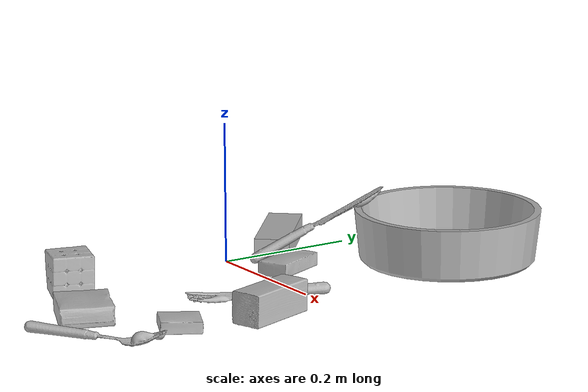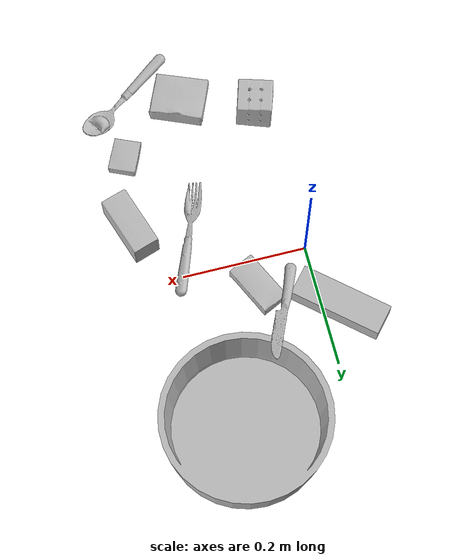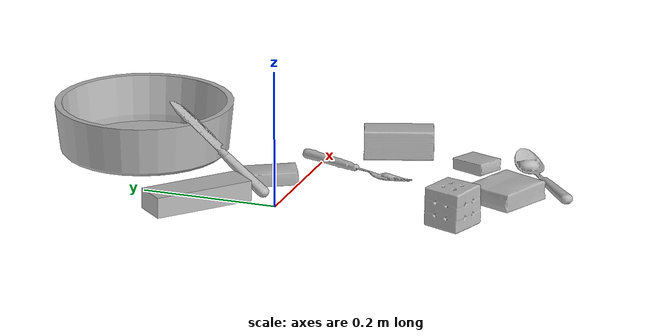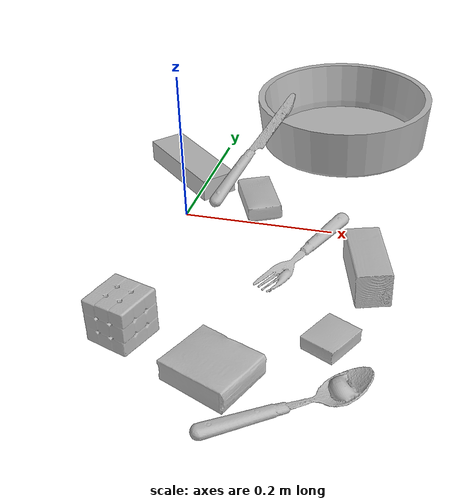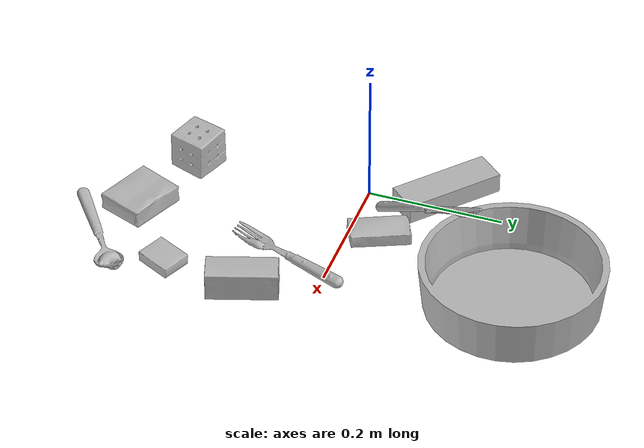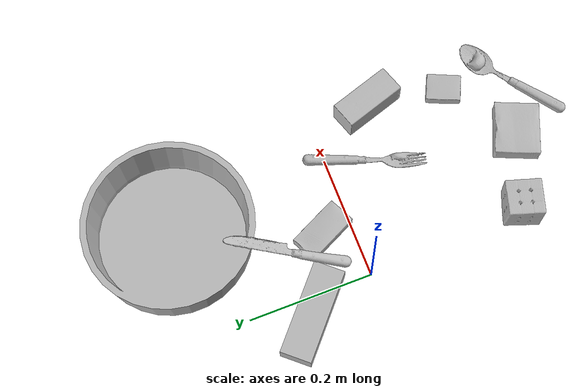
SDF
<sdf version="1.4">
  <world name="default">
    <light name="light1" type="point">
      <pose>0 0 1 0 0 0</pose>
      <diffuse>3 3 3 1</diffuse>
      <specular>3 3 3 1</specular>
    </light>
    <light name="light2" type="point">
      <pose>0 0.5 2 0 0 0</pose>
      <diffuse>1 1 1 1</diffuse>
      <specular>1 1 1 1</specular>
    </light>
    <light name="light3" type="point">
      <pose>0 0.5 2 0 0 0</pose>
      <diffuse>3 3 3 1</diffuse>
      <specular>3 3 3 1</specular>
    </light>
    <scene>
      <ambient>0.7 0.7 0.7</ambient>
    </scene>
    <model name="box11">
      <link name="link_box11">
        <collision name="default">
          <geometry>
            <mesh>
              <uri>model://jenga/collision_meshes/collision.obj</uri>
              <scale>1.0 1.0 1.0</scale>
            </mesh>
          </geometry>
          <surface>
            <friction>
              <ode>
                <mu>0.5</mu>
                <mu2>0.5</mu2>
              </ode>
            </friction>
          <contact>
        <ode>
            <max_vel>0</max_vel>
            <min_depth>0.0001</min_depth>
            <kp>1e8</kp>
        </ode>
    </contact></surface>
        </collision>
        <visual name="default">
          <geometry>
            <mesh>
              <uri>model://jenga/visual_meshes/visual.dae</uri>
              <scale>1.0 1.0 1.0</scale>
            </mesh>
          </geometry>
        </visual>
        <inertial>
          <mass>0.22063912451267242</mass>
          <pose>-2.502855807051674e-07 -0.00010250011109746993 -4.0923405322246253e-05 0.0 -7.34215461761844e-07 0.0</pose>
          <inertia>
            <ixx>6.1056206e-05</ixx>
            <iyy>0.00041371517</iyy>
            <izz>0.00044167612</izz>
            <ixy>0</ixy>
            <ixz>0</ixz>
            <iyz>0</iyz>
          </inertia>
        </inertial>
      </link>
      <pose>-0.027867667376995087 0.10774640738964081 0.015000000596046448 5.074702473125783e-07 1.493129544517112e-07 2.4208595408642064</pose>
    </model>
    <model name="box12">
      <link name="link_box12">
        <collision name="default">
          <geometry>
            <mesh>
              <uri>model://sugar_box/collision_meshes/collision.obj</uri>
              <scale>0.5 0.5 0.5</scale>
            </mesh>
          </geometry>
          <surface>
            <friction>
              <ode>
                <mu>0.5</mu>
                <mu2>0.5</mu2>
              </ode>
            </friction>
          <contact>
        <ode>
            <max_vel>0</max_vel>
            <min_depth>0.0001</min_depth>
            <kp>1e8</kp>
        </ode>
    </contact></surface>
        </collision>
        <visual name="default">
          <geometry>
            <mesh>
              <uri>model://sugar_box/visual_meshes/visual.dae</uri>
              <scale>0.5 0.5 0.5</scale>
            </mesh>
          </geometry>
        </visual>
        <inertial>
          <mass>0.053318966180086136</mass>
          <pose>0.0005171863595023751 1.924554817378521e-05 -0.00018182402709499002 -0.00040462627129080113 0.001050663522124822 0.0026153787889376494</pose>
          <inertia>
            <ixx>1.1106302e-05</ixx>
            <iyy>3.5897858e-05</iyy>
            <izz>4.2974014e-05</izz>
            <ixy>0</ixy>
            <ixz>0</ixz>
            <iyz>0</iyz>
          </inertia>
        </inertial>
      </link>
      <pose>0.08972600102424622 0.04557061195373535 0.01139929797500372 0.0007754874237024986 -0.023432634904433303 -1.1239626454362897</pose>
    </model>
    <model name="box13">
      <link name="link_box13">
        <collision name="default">
          <geometry>
            <mesh>
              <uri>model://gelatin_box/collision_meshes/collision.obj</uri>
              <scale>1.0 1.0 1.0</scale>
            </mesh>
          </geometry>
          <surface>
            <friction>
              <ode>
                <mu>0.5</mu>
                <mu2>0.5</mu2>
              </ode>
            </friction>
          <contact>
        <ode>
            <max_vel>0</max_vel>
            <min_depth>0.0001</min_depth>
            <kp>1e8</kp>
        </ode>
    </contact></surface>
        </collision>
        <visual name="default">
          <geometry>
            <mesh>
              <uri>model://gelatin_box/visual_meshes/visual.dae</uri>
              <scale>1.0 1.0 1.0</scale>
            </mesh>
          </geometry>
        </visual>
        <inertial>
          <mass>0.19111748039722443</mass>
          <pose>0.0004319618456065655 0.00011156871914863586 -0.00036403207923285663 -0.0010503719765995955 -0.004755818690324038 0.01644055947160125</pose>
          <inertia>
            <ixx>0.00013491335</ixx>
            <iyy>9.63679e-05</iyy>
            <izz>0.00020536821</izz>
            <ixy>0</ixy>
            <ixz>0</ixz>
            <iyz>0</iyz>
          </inertia>
        </inertial>
      </link>
      <pose>0.1338578760623932 -0.30272799730300903 0.015168312937021255 0.005597402643989079 -0.0073044715861611135 1.163271947563906</pose>
    </model>
    <model name="box21">
      <link name="link_box21">
        <collision name="default">
          <geometry>
            <mesh>
              <uri>model://pudding_box/collision_meshes/collision.obj</uri>
              <scale>0.5 0.5 0.5</scale>
            </mesh>
          </geometry>
          <surface>
            <friction>
              <ode>
                <mu>0.5</mu>
                <mu2>0.5</mu2>
              </ode>
            </friction>
          <contact>
        <ode>
            <max_vel>0</max_vel>
            <min_depth>0.0001</min_depth>
            <kp>1e8</kp>
        </ode>
    </contact></surface>
        </collision>
        <visual name="default">
          <geometry>
            <mesh>
              <uri>model://pudding_box/visual_meshes/visual.dae</uri>
              <scale>0.5 0.5 0.5</scale>
            </mesh>
          </geometry>
        </visual>
        <inertial>
          <mass>0.037507444620132446</mass>
          <pose>0.00024474109522998333 0.0004033942532259971 -0.0002594413817860186 0.00521310221980129 -0.006603800139852783 0.020079832606434308</pose>
          <inertia>
            <ixx>1.0600058e-05</ixx>
            <iyy>7.131795e-06</iyy>
            <izz>1.5653754e-05</izz>
            <ixy>0</ixy>
            <ixz>0</ixz>
            <iyz>0</iyz>
          </inertia>
        </inertial>
      </link>
      <pose>0.24382774531841278 -0.22340841591358185 0.009862902574241161 0.022348523532573696 -0.011391744381461288 2.7062908209220606</pose>
    </model>
    <model name="box22">
      <link name="link_box22">
        <collision name="default">
          <geometry>
            <mesh>
              <uri>model://rubiks_cube/collision_meshes/collision.obj</uri>
              <scale>1.0 1.0 1.0</scale>
            </mesh>
          </geometry>
          <surface>
            <friction>
              <ode>
                <mu>0.5</mu>
                <mu2>0.5</mu2>
              </ode>
            </friction>
          <contact>
        <ode>
            <max_vel>0</max_vel>
            <min_depth>0.0001</min_depth>
            <kp>1e8</kp>
        </ode>
    </contact></surface>
        </collision>
        <visual name="default">
          <geometry>
            <mesh>
              <uri>model://rubiks_cube/visual_meshes/visual.dae</uri>
              <scale>1.0 1.0 1.0</scale>
            </mesh>
          </geometry>
        </visual>
        <inertial>
          <mass>0.19412381947040558</mass>
          <pose>2.6721041649580002e-05 5.2569666877388954e-05 -7.264316082000732e-06 -0.05467327462967597 -0.09814157667114887 -0.034454893398498845</pose>
          <inertia>
            <ixx>0.000107266445</ixx>
            <iyy>0.0001067662</iyy>
            <izz>0.00010815532</izz>
            <ixy>0</ixy>
            <ixz>0</ixz>
            <iyz>0</iyz>
          </inertia>
        </inertial>
      </link>
      <pose>0.015841253101825714 -0.2584916949272156 0.028678975999355316 -3.300770750387792e-06 -8.605102912519851e-07 -0.3082101858531904</pose>
    </model>
    <model name="box23">
      <link name="link_box23">
        <collision name="default">
          <geometry>
            <mesh>
              <uri>model://wood_block/collision_meshes/collision.obj</uri>
              <scale>0.5 0.5 0.5</scale>
            </mesh>
          </geometry>
          <surface>
            <friction>
              <ode>
                <mu>0.5</mu>
                <mu2>0.5</mu2>
              </ode>
            </friction>
          <contact>
        <ode>
            <max_vel>0</max_vel>
            <min_depth>0.0001</min_depth>
            <kp>1e8</kp>
        </ode>
    </contact></surface>
        </collision>
        <visual name="default">
          <geometry>
            <mesh>
              <uri>model://wood_block/visual_meshes/visual.dae</uri>
              <scale>0.5 0.5 0.5</scale>
            </mesh>
          </geometry>
        </visual>
        <inertial>
          <mass>0.12021861970424652</mass>
          <pose>-2.9066577553749084e-06 -0.000285404734313488 0.00013204291462898254 -0.05220783851692058 -0.005192695246339916 -0.006861377900732038</pose>
          <inertia>
            <ixx>4.0217674e-05</ixx>
            <iyy>0.00012704768</iyy>
            <izz>0.00012657243</izz>
            <ixy>0</ixy>
            <ixz>0</ixz>
            <iyz>0</iyz>
          </inertia>
        </inertial>
      </link>
      <pose>0.26290005445480347 -0.09774709492921829 0.022629264742136 -0.005208456639173209 0.005718755207938706 -1.2510733126812366</pose>
    </model>
    <model name="plate1">
      <link name="link_plate1">
        <collision name="default">
          <geometry>
            <mesh>
              <uri>model://pan_tefal/collision_meshes/collision.obj</uri>
              <scale>1.0 1.0 1.0</scale>
            </mesh>
          </geometry>
          <surface>
            <friction>
              <ode>
                <mu>0.5</mu>
                <mu2>0.5</mu2>
              </ode>
            </friction>
          <contact>
        <ode>
            <max_vel>0</max_vel>
            <min_depth>0.0001</min_depth>
            <kp>1e8</kp>
        </ode>
    </contact></surface>
        </collision>
        <visual name="default">
          <geometry>
            <mesh>
              <uri>model://pan_tefal/visual_meshes/visual.dae</uri>
              <scale>1.0 1.0 1.0</scale>
            </mesh>
          </geometry>
        </visual>
        <inertial>
          <mass>1.1174349784851074</mass>
          <pose>-0.0001800186582840979 3.278696021880023e-05 -0.00851493701338768 0.0008190242272949328 -0.00033013996347192336 -0.33186114310704434</pose>
          <inertia>
            <ixx>0.0077136005</ixx>
            <iyy>0.0077633304</iyy>
            <izz>0.014199255</izz>
            <ixy>0</ixy>
            <ixz>0</ixz>
            <iyz>0</iyz>
          </inertia>
        </inertial>
      </link>
      <pose>0.1667015105485916 0.26608914136886597 0.03805002197623253 8.11042742150848e-09 -8.575475801113528e-09 -2.1885425789632014</pose>
    </model>
    <model name="silverware1">
      <link name="link_silverware1">
        <collision name="default">
          <geometry>
            <mesh>
              <uri>model://spoon/collision_meshes/collision.obj</uri>
              <scale>1.0 1.0 1.0</scale>
            </mesh>
          </geometry>
          <surface>
            <friction>
              <ode>
                <mu>0.5</mu>
                <mu2>0.5</mu2>
              </ode>
            </friction>
          <contact>
        <ode>
            <max_vel>0</max_vel>
            <min_depth>0.0001</min_depth>
            <kp>1e8</kp>
        </ode>
    </contact></surface>
        </collision>
        <visual name="default">
          <geometry>
            <mesh>
              <uri>model://spoon/visual_meshes/visual.dae</uri>
              <scale>1.0 1.0 1.0</scale>
            </mesh>
          </geometry>
        </visual>
        <inertial>
          <mass>0.03790392354130745</mass>
          <pose>-0.005526311695575714 -0.0016034170985221863 -0.0007271655485965312 0.03521845899657386 -0.039065840459698326 0.006150612465639116</pose>
          <inertia>
            <ixx>2.1082776e-06</ixx>
            <iyy>0.00014422317</iyy>
            <izz>0.00014526285</izz>
            <ixy>0</ixy>
            <ixz>0</ixz>
            <iyz>0</iyz>
          </inertia>
        </inertial>
      </link>
      <pose>0.21839526295661926 -0.3313553035259247 0.00838526152074337 0.006729253076973184 0.026893007858662835 0.6320279662396616</pose>
    </model>
    <model name="silverware2">
      <link name="link_silverware2">
        <collision name="default">
          <geometry>
            <mesh>
              <uri>model://fork/collision_meshes/collision.obj</uri>
              <scale>1.0 1.0 1.0</scale>
            </mesh>
          </geometry>
          <surface>
            <friction>
              <ode>
                <mu>0.5</mu>
                <mu2>0.5</mu2>
              </ode>
            </friction>
          <contact>
        <ode>
            <max_vel>0</max_vel>
            <min_depth>0.0001</min_depth>
            <kp>1e8</kp>
        </ode>
    </contact></surface>
        </collision>
        <visual name="default">
          <geometry>
            <mesh>
              <uri>model://fork/visual_meshes/visual.dae</uri>
              <scale>1.0 1.0 1.0</scale>
            </mesh>
          </geometry>
        </visual>
        <inertial>
          <mass>0.029004188254475594</mass>
          <pose>-0.02957005612552166 0.0004658824182115495 0.00032188621116802096 -0.013551880215526314 -0.010977843078655252 0.014453906566097012</pose>
          <inertia>
            <ixx>1.0167608e-06</ixx>
            <iyy>7.572158e-05</iyy>
            <izz>7.617634e-05</izz>
            <ixy>0</ixy>
            <ixz>0</ixz>
            <iyz>0</iyz>
          </inertia>
        </inertial>
      </link>
      <pose>0.17723838984966278 -0.059679582715034485 0.005740725435316563 -0.18705978744483956 0.02432271859055491 -1.9403791717464722</pose>
    </model>
    <model name="silverware3">
      <link name="link_silverware3">
        <collision name="default">
          <geometry>
            <mesh>
              <uri>model://knife/collision_meshes/collision.obj</uri>
              <scale>1.0 1.0 1.0</scale>
            </mesh>
          </geometry>
          <surface>
            <friction>
              <ode>
                <mu>0.5</mu>
                <mu2>0.5</mu2>
              </ode>
            </friction>
          <contact>
        <ode>
            <max_vel>0</max_vel>
            <min_depth>0.0001</min_depth>
            <kp>1e8</kp>
        </ode>
    </contact></surface>
        </collision>
        <visual name="default">
          <geometry>
            <mesh>
              <uri>model://knife/visual_meshes/visual.dae</uri>
              <scale>1.0 1.0 1.0</scale>
            </mesh>
          </geometry>
        </visual>
        <inertial>
          <mass>0.015800314024090767</mass>
          <pose>-0.023785250261425972 0.0015275126788765192 5.0620288675418124e-05 0.07305498599936577 0.01724841842216061 -0.0074098211805850795</pose>
          <inertia>
            <ixx>4.48477e-07</ixx>
            <iyy>6.0702252e-05</iyy>
            <izz>6.0846694e-05</izz>
            <ixy>0</ixy>
            <ixz>0</ixz>
            <iyz>0</iyz>
          </inertia>
        </inertial>
      </link>
      <pose>0.06801304966211319 0.11008323729038239 0.05295249819755554 -0.0007380689912319117 -0.47805896711790624 1.1598900912220393</pose>
    </model>
  <physics type="ode">
      <max_contacts>50</max_contacts>
      <ode>
        <solver>
          <type>quick</type>
          <iters>75</iters>
        </solver>
        <constraints>
          <contact_max_correcting_vel>0</contact_max_correcting_vel>
          <contact_surface_layer>0</contact_surface_layer>
        </constraints>
      </ode>
    </physics></world>
</sdf>
